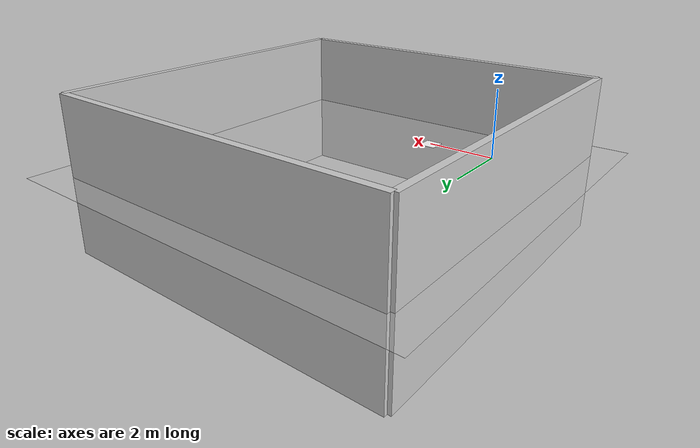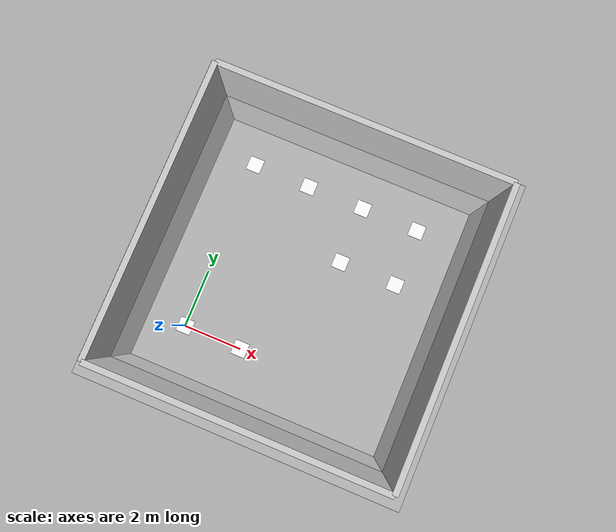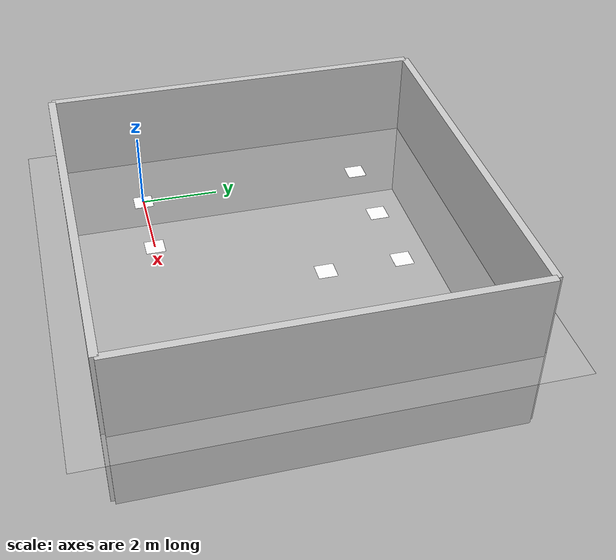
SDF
<sdf version="1.9">
 <world name="aruco_floor">
  <physics type="ode">
   <max_step_size>0.004</max_step_size>
   <real_time_factor>1.0</real_time_factor>
   <real_time_update_rate>250</real_time_update_rate>
  </physics>
  <gravity>0 0 -9.8</gravity>
  <magnetic_field>6e-06 2.3e-05 -4.2e-05</magnetic_field>
  <atmosphere type="adiabatic"/>
  <scene>
   <grid>false</grid>
   <ambient>0.4 0.4 0.4 1</ambient>
   <background>0.7 0.7 0.7 1</background>
   <shadows>true</shadows>
  </scene>
  <model name="ground_plane">
   <static>true</static>
   <link name="link">
    <collision name="collision">
     <geometry><plane><normal>0 0 1</normal><size>1 1</size></plane></geometry>
    </collision>
    <visual name="visual">
     <geometry><plane><normal>0 0 1</normal><size>100 100</size></plane></geometry>
     <material>
      <ambient>0.8 0.8 0.8 1</ambient>
      <diffuse>0.8 0.8 0.8 1</diffuse>
      <specular>0.8 0.8 0.8 1</specular>
     </material>
    </visual>
    <pose>0 0 -0.0001 0 -0 0</pose>
    <inertial>
     <mass>1</mass>
     <inertia><ixx>1</ixx><ixy>0</ixy><ixz>0</ixz><iyy>1</iyy><iyz>0</iyz><izz>1</izz></inertia>
    </inertial>
    <enable_wind>true</enable_wind>
   </link>
  </model>
  <light name="sunUTC" type="directional">
   <pose>0 0 500 0 -0 0</pose>
   <intensity>1</intensity>
   <direction>0.001 0.225 -0.78</direction>
   <diffuse>0.904 0.904 0.904 1</diffuse>
   <specular>0.271 0.271 0.271 1</specular>
   <attenuation><range>2000</range><linear>0</linear><constant>1</constant><quadratic>0</quadratic></attenuation>
   <spot><inner_angle>0</inner_angle><outer_angle>0</outer_angle><falloff>0</falloff></spot>
  </light>
  <include><uri>model://arucotag0</uri></include>
  <include><uri>model://arucotag1</uri><pose>2 0 0 0 0 0</pose></include>
  <include><uri>model://arucotag10</uri><pose>4 4 0 0 0 0</pose></include>
  <include><uri>model://arucotag11</uri><pose>6 4 0 0 0 0</pose></include>
  <include><uri>model://arucotag12</uri><pose>0 6 0 0 0 0</pose></include>
  <include><uri>model://arucotag13</uri><pose>2 6 0 0 0 0</pose></include>
  <include><uri>model://arucotag14</uri><pose>4 6 0 0 0 0</pose></include>
  <include><uri>model://arucotag15</uri><pose>6 6 0 0 0 0</pose></include>
  <include><name>wall0</name><uri>model://my_wall</uri><pose>-2 3 0 0 0 0</pose></include>
  <include><name>wall1</name><uri>model://my_wall</uri><pose>8 3 0 0 0 0</pose></include>
  <include><name>wall2</name><uri>model://my_wall</uri><pose>3 -2 0 0 0 1.5708</pose></include>
  <include><name>wall3</name><uri>model://my_wall</uri><pose>3 8 0 0 0 1.5708</pose></include>
  <spherical_coordinates>
   <surface_model>EARTH_WGS84</surface_model>
   <world_frame_orientation>ENU</world_frame_orientation>
   <latitude_deg>47.397971057728974</latitude_deg>
   <longitude_deg>8.546163739800146</longitude_deg>
   <elevation>0</elevation>
  </spherical_coordinates>
 </world>
</sdf>

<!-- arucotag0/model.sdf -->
<sdf version='1.9'>
  <model name='arucotag0'>
    <static>true</static>
    <pose>0 0 0.001 0 0 0</pose>
    <link name='base'>
      <visual name='base_visual'>
        <geometry>
          <plane>
            <normal>0 0 1</normal>
            <size>0.5 0.5</size>
          </plane>
        </geometry>
        <material>
          <diffuse>1 1 1 1</diffuse>
          <specular>0.4 0.4 0.4 1</specular>
          <pbr>
            <metal>
              <albedo_map>model://arucotag0/marker_image0.png</albedo_map>
            </metal>
          </pbr>
        </material>
      </visual>
    </link>
  </model>
</sdf>

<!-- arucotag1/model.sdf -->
<sdf version='1.9'>
  <model name='arucotag1'>
    <static>true</static>
    <pose>0 0 0.001 0 0 0</pose>
    <link name='base'>
      <visual name='base_visual'>
        <geometry>
          <plane>
            <normal>0 0 1</normal>
            <size>0.5 0.5</size>
          </plane>
        </geometry>
        <material>
          <diffuse>1 1 1 1</diffuse>
          <specular>0.4 0.4 0.4 1</specular>
          <pbr>
            <metal>
              <albedo_map>model://arucotag1/marker_image1.png</albedo_map>
            </metal>
          </pbr>
        </material>
      </visual>
    </link>
  </model>
</sdf>

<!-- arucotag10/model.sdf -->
<sdf version='1.9'>
  <model name='arucotag10'>
    <static>true</static>
    <pose>0 0 0.001 0 0 0</pose>
    <link name='base'>
      <visual name='base_visual'>
        <geometry>
          <plane>
            <normal>0 0 1</normal>
            <size>0.5 0.5</size>
          </plane>
        </geometry>
        <material>
          <diffuse>1 1 1 1</diffuse>
          <specular>0.4 0.4 0.4 1</specular>
          <pbr>
            <metal>
              <albedo_map>model://arucotag10/marker_image10.png</albedo_map>
            </metal>
          </pbr>
        </material>
      </visual>
    </link>
  </model>
</sdf>

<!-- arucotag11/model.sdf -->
<sdf version='1.9'>
  <model name='arucotag11'>
    <static>true</static>
    <pose>0 0 0.001 0 0 0</pose>
    <link name='base'>
      <visual name='base_visual'>
        <geometry>
          <plane>
            <normal>0 0 1</normal>
            <size>0.5 0.5</size>
          </plane>
        </geometry>
        <material>
          <diffuse>1 1 1 1</diffuse>
          <specular>0.4 0.4 0.4 1</specular>
          <pbr>
            <metal>
              <albedo_map>model://arucotag11/marker_image11.png</albedo_map>
            </metal>
          </pbr>
        </material>
      </visual>
    </link>
  </model>
</sdf>

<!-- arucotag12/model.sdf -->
<sdf version='1.9'>
  <model name='arucotag12'>
    <static>true</static>
    <pose>0 0 0.001 0 0 0</pose>
    <link name='base'>
      <visual name='base_visual'>
        <geometry>
          <plane>
            <normal>0 0 1</normal>
            <size>0.5 0.5</size>
          </plane>
        </geometry>
        <material>
          <diffuse>1 1 1 1</diffuse>
          <specular>0.4 0.4 0.4 1</specular>
          <pbr>
            <metal>
              <albedo_map>model://arucotag12/marker_image12.png</albedo_map>
            </metal>
          </pbr>
        </material>
      </visual>
    </link>
  </model>
</sdf>

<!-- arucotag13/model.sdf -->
<sdf version='1.9'>
  <model name='arucotag13'>
    <static>true</static>
    <pose>0 0 0.001 0 0 0</pose>
    <link name='base'>
      <visual name='base_visual'>
        <geometry>
          <plane>
            <normal>0 0 1</normal>
            <size>0.5 0.5</size>
          </plane>
        </geometry>
        <material>
          <diffuse>1 1 1 1</diffuse>
          <specular>0.4 0.4 0.4 1</specular>
          <pbr>
            <metal>
              <albedo_map>model://arucotag13/marker_image13.png</albedo_map>
            </metal>
          </pbr>
        </material>
      </visual>
    </link>
  </model>
</sdf>

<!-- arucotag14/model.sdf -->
<sdf version='1.9'>
  <model name='arucotag14'>
    <static>true</static>
    <pose>0 0 0.001 0 0 0</pose>
    <link name='base'>
      <visual name='base_visual'>
        <geometry>
          <plane>
            <normal>0 0 1</normal>
            <size>0.5 0.5</size>
          </plane>
        </geometry>
        <material>
          <diffuse>1 1 1 1</diffuse>
          <specular>0.4 0.4 0.4 1</specular>
          <pbr>
            <metal>
              <albedo_map>model://arucotag14/marker_image14.png</albedo_map>
            </metal>
          </pbr>
        </material>
      </visual>
    </link>
  </model>
</sdf>

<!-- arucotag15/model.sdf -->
<sdf version='1.9'>
  <model name='arucotag15'>
    <static>true</static>
    <pose>0 0 0.001 0 0 0</pose>
    <link name='base'>
      <visual name='base_visual'>
        <geometry>
          <plane>
            <normal>0 0 1</normal>
            <size>0.5 0.5</size>
          </plane>
        </geometry>
        <material>
          <diffuse>1 1 1 1</diffuse>
          <specular>0.4 0.4 0.4 1</specular>
          <pbr>
            <metal>
              <albedo_map>model://arucotag15/marker_image15.png</albedo_map>
            </metal>
          </pbr>
        </material>
      </visual>
    </link>
  </model>
</sdf>

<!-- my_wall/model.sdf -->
<sdf version='1.9'>
  <model name="my_wall">
    <pose>0 0 0 0 0 0</pose>
    <static>true</static>
    <link name="link1">
    <collision name="collision">
      <geometry>
        <box>
          <size>0.2 10 4.5</size>
        </box>
      </geometry>
    </collision>
    <visual name="visual">
      <geometry>
        <box>
          <size>0.2 10 4.5</size>
        </box>
      </geometry>
      <material>
        <ambient>0.3 0.3 0.3 1</ambient>
        <diffuse>0.8 0.8 0.8 1</diffuse>
        <specular>1 1 1 1</specular>
      </material>
    </visual>
    </link>
  </model>
</sdf>
